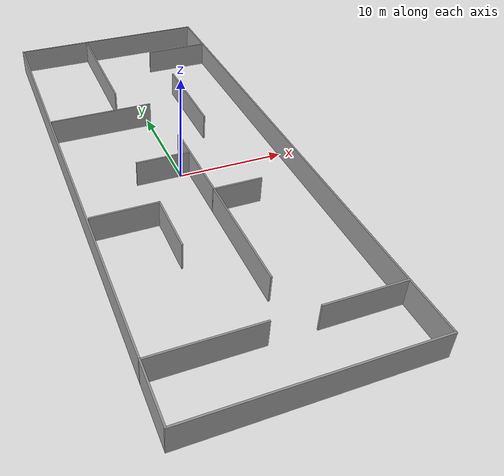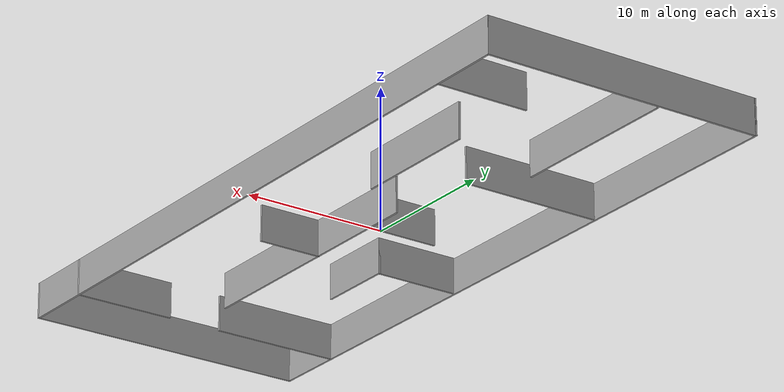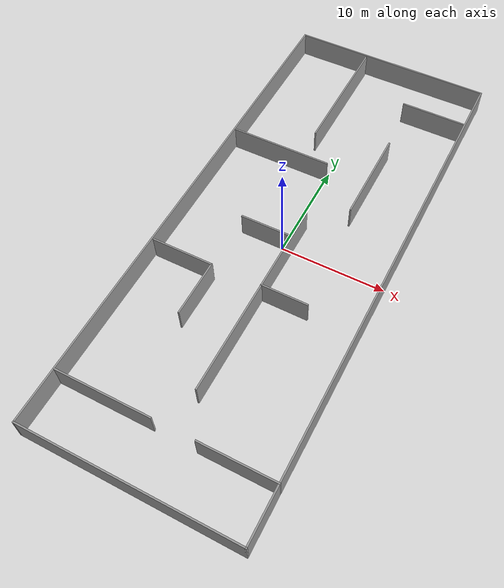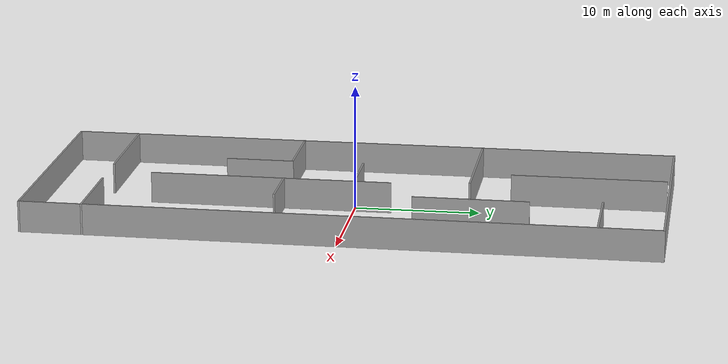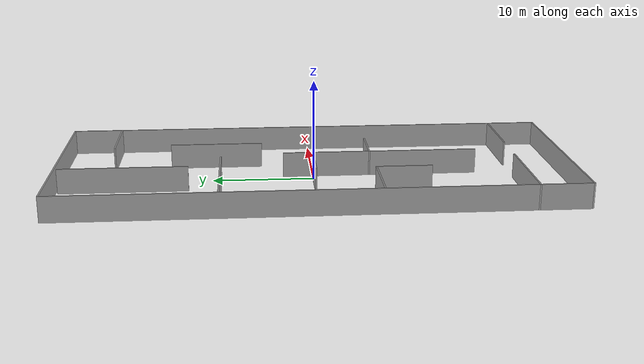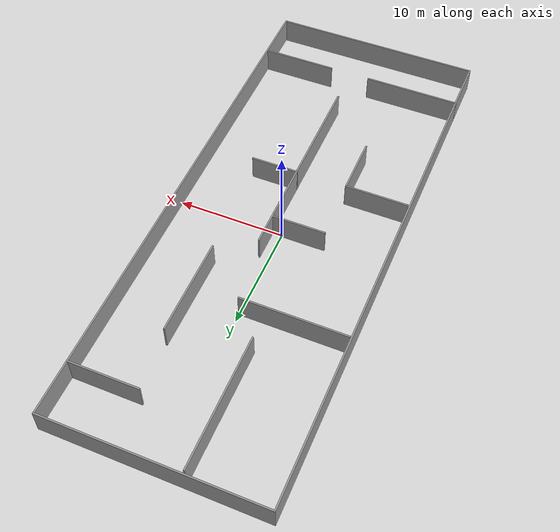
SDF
<?xml version='1.0'?>
<sdf version='1.7'>
  <model name='new_walls'>
    <pose>0 0 0 0 -0 0</pose>
    <link name='Wall_0'>
      <collision name='Wall_0_Collision'>
        <geometry>
          <box>
            <size>20.15 0.15 2.5</size>
          </box>
        </geometry>
        <pose>0 0 1.25 0 -0 0</pose>
      </collision>
      <visual name='Wall_0_Visual'>
        <pose>0 0 1.25 0 -0 0</pose>
        <geometry>
          <box>
            <size>20.15 0.15 2.5</size>
          </box>
        </geometry>
        <material>
          <script>
            <uri>file://media/materials/scripts/gazebo.material</uri>
            <name>Gazebo/Grey</name>
          </script>
          <ambient>1 1 1 1</ambient>
        </material>
        <meta>
          <layer>0</layer>
        </meta>
      </visual>
      <pose>0 -25 0 0 -0 0</pose>
    </link>
    <link name='Wall_15'>
      <collision name='Wall_15_Collision'>
        <geometry>
          <box>
            <size>12.5 0.15 2.5</size>
          </box>
        </geometry>
        <pose>0 0 1.25 0 -0 0</pose>
      </collision>
      <visual name='Wall_15_Visual'>
        <pose>0 0 1.25 0 -0 0</pose>
        <geometry>
          <box>
            <size>12.5 0.15 2.5</size>
          </box>
        </geometry>
        <material>
          <script>
            <uri>file://media/materials/scripts/gazebo.material</uri>
            <name>Gazebo/Grey</name>
          </script>
          <ambient>1 1 1 1</ambient>
        </material>
        <meta>
          <layer>0</layer>
        </meta>
      </visual>
      <pose>-2.65486 18.511 0 0 -0 -1.5708</pose>
    </link>
    <link name='Wall_17'>
      <collision name='Wall_17_Collision'>
        <geometry>
          <box>
            <size>9.948 0.15 2.5</size>
          </box>
        </geometry>
        <pose>0 0 1.25 0 -0 0</pose>
      </collision>
      <visual name='Wall_17_Visual'>
        <pose>0 0 1.25 0 -0 0</pose>
        <geometry>
          <box>
            <size>9.948 0.15 2.5</size>
          </box>
        </geometry>
        <material>
          <script>
            <uri>file://media/materials/scripts/gazebo.material</uri>
            <name>Gazebo/Grey</name>
          </script>
          <ambient>1 1 1 1</ambient>
        </material>
        <meta>
          <layer>0</layer>
        </meta>
      </visual>
      <pose>-4.899 9.21 0 0 -0 0</pose>
    </link>
    <link name='Wall_20'>
      <collision name='Wall_20_Collision'>
        <geometry>
          <box>
            <size>7.15 0.15 2.5</size>
          </box>
        </geometry>
        <pose>0 0 1.25 0 -0 0</pose>
      </collision>
      <visual name='Wall_20_Visual'>
        <pose>0 0 1.25 0 -0 0</pose>
        <geometry>
          <box>
            <size>7.15 0.15 2.5</size>
          </box>
        </geometry>
        <material>
          <script>
            <uri>file://media/materials/scripts/gazebo.material</uri>
            <name>Gazebo/Grey</name>
          </script>
          <ambient>1 1 1 1</ambient>
        </material>
        <meta>
          <layer>0</layer>
        </meta>
      </visual>
      <pose>6.5 -20 0 0 -0 3.14159</pose>
    </link>
    <link name='Wall_22'>
      <collision name='Wall_22_Collision'>
        <geometry>
          <box>
            <size>9.15 0.15 2.5</size>
          </box>
        </geometry>
        <pose>0 0 1.25 0 -0 0</pose>
      </collision>
      <visual name='Wall_22_Visual'>
        <pose>0 0 1.25 0 -0 0</pose>
        <geometry>
          <box>
            <size>9.15 0.15 2.5</size>
          </box>
        </geometry>
        <material>
          <script>
            <uri>file://media/materials/scripts/gazebo.material</uri>
            <name>Gazebo/Grey</name>
          </script>
          <ambient>1 1 1 1</ambient>
        </material>
        <meta>
          <layer>0</layer>
        </meta>
      </visual>
      <pose>-5.5 -20 0 0 -0 0</pose>
    </link>
    <link name='Wall_25'>
      <collision name='Wall_25_Collision'>
        <geometry>
          <box>
            <size>19.5 0.15 2.5</size>
          </box>
        </geometry>
        <pose>0 0 1.25 0 -0 0</pose>
      </collision>
      <visual name='Wall_25_Visual'>
        <pose>0 0 1.25 0 -0 0</pose>
        <geometry>
          <box>
            <size>19.5 0.15 2.5</size>
          </box>
        </geometry>
        <material>
          <script>
            <uri>file://media/materials/scripts/gazebo.material</uri>
            <name>Gazebo/Grey</name>
          </script>
          <ambient>1 1 1 1</ambient>
        </material>
        <meta>
          <layer>0</layer>
        </meta>
      </visual>
      <pose>0.892387 -6.72845 0 0 -0 -1.5708</pose>
    </link>
    <link name='Wall_27'>
      <collision name='Wall_27_Collision'>
        <geometry>
          <box>
            <size>5 0.15 2.5</size>
          </box>
        </geometry>
        <pose>0 0 1.25 0 -0 0</pose>
      </collision>
      <visual name='Wall_27_Visual'>
        <pose>0 0 1.25 0 -0 0</pose>
        <geometry>
          <box>
            <size>5 0.15 2.5</size>
          </box>
        </geometry>
        <material>
          <script>
            <uri>file://media/materials/scripts/gazebo.material</uri>
            <name>Gazebo/Grey</name>
          </script>
          <ambient>1 1 1 1</ambient>
        </material>
        <meta>
          <layer>0</layer>
        </meta>
      </visual>
      <pose>-1.64804 0.040986 0 0 -0 3.14159</pose>
    </link>
    <link name='Wall_29'>
      <collision name='Wall_29_Collision'>
        <geometry>
          <box>
            <size>6 0.15 2.5</size>
          </box>
        </geometry>
        <pose>0 0 1.25 0 -0 0</pose>
      </collision>
      <visual name='Wall_29_Visual'>
        <pose>0 0 1.25 0 -0 0</pose>
        <geometry>
          <box>
            <size>6 0.15 2.5</size>
          </box>
        </geometry>
        <material>
          <script>
            <uri>file://media/materials/scripts/gazebo.material</uri>
            <name>Gazebo/Grey</name>
          </script>
          <ambient>1 1 1 1</ambient>
        </material>
        <meta>
          <layer>0</layer>
        </meta>
      </visual>
      <pose>-6.84408 -5.7701 0 0 -0 0</pose>
    </link>
    <link name='Wall_3'>
      <collision name='Wall_3_Collision'>
        <geometry>
          <box>
            <size>50.15 0.15 2.5</size>
          </box>
        </geometry>
        <pose>0 0 1.25 0 -0 0</pose>
      </collision>
      <visual name='Wall_3_Visual'>
        <pose>0 0 1.25 0 -0 0</pose>
        <geometry>
          <box>
            <size>50.15 0.15 2.5</size>
          </box>
        </geometry>
        <material>
          <script>
            <uri>file://media/materials/scripts/gazebo.material</uri>
            <name>Gazebo/Grey</name>
          </script>
          <ambient>1 1 1 1</ambient>
        </material>
        <meta>
          <layer>0</layer>
        </meta>
      </visual>
      <pose>-10 0 0 0 -0 1.5708</pose>
    </link>
    <link name='Wall_30'>
      <collision name='Wall_30_Collision'>
        <geometry>
          <box>
            <size>5.5 0.15 2.5</size>
          </box>
        </geometry>
        <pose>0 0 1.25 0 -0 0</pose>
      </collision>
      <visual name='Wall_30_Visual'>
        <pose>0 0 1.25 0 -0 0</pose>
        <geometry>
          <box>
            <size>5.5 0.15 2.5</size>
          </box>
        </geometry>
        <material>
          <script>
            <uri>file://media/materials/scripts/gazebo.material</uri>
            <name>Gazebo/Grey</name>
          </script>
          <ambient>1 1 1 1</ambient>
        </material>
        <meta>
          <layer>0</layer>
        </meta>
      </visual>
      <pose>-3.91907 -8.4451 0 0 -0 -1.5708</pose>
    </link>
    <link name='Wall_33'>
      <collision name='Wall_33_Collision'>
        <geometry>
          <box>
            <size>4.5 0.15 2.5</size>
          </box>
        </geometry>
        <pose>0 0 1.25 0 -0 0</pose>
      </collision>
      <visual name='Wall_33_Visual'>
        <pose>0 0 1.25 0 -0 0</pose>
        <geometry>
          <box>
            <size>4.5 0.15 2.5</size>
          </box>
        </geometry>
        <material>
          <script>
            <uri>file://media/materials/scripts/gazebo.material</uri>
            <name>Gazebo/Grey</name>
          </script>
          <ambient>1 1 1 1</ambient>
        </material>
        <meta>
          <layer>0</layer>
        </meta>
      </visual>
      <pose>3.05958 -5.66248 0 0 -0 0</pose>
    </link>
    <link name='Wall_35'>
      <collision name='Wall_35_Collision'>
        <geometry>
          <box>
            <size>6.575 0.15 2.5</size>
          </box>
        </geometry>
        <pose>0 0 1.25 0 -0 0</pose>
      </collision>
      <visual name='Wall_35_Visual'>
        <pose>0 0 1.25 0 -0 0</pose>
        <geometry>
          <box>
            <size>6.575 0.15 2.5</size>
          </box>
        </geometry>
        <material>
          <script>
            <uri>file://media/materials/scripts/gazebo.material</uri>
            <name>Gazebo/Grey</name>
          </script>
          <ambient>1 1 1 1</ambient>
        </material>
        <meta>
          <layer>0</layer>
        </meta>
      </visual>
      <pose>6.7875 20 0 0 -0 0</pose>
    </link>
    <link name='Wall_38'>
      <collision name='Wall_38_Collision'>
        <geometry>
          <box>
            <size>9.25 0.15 2.5</size>
          </box>
        </geometry>
        <pose>0 0 1.25 0 -0 0</pose>
      </collision>
      <visual name='Wall_38_Visual'>
        <pose>0 0 1.25 0 -0 0</pose>
        <geometry>
          <box>
            <size>9.25 0.15 2.5</size>
          </box>
        </geometry>
        <material>
          <script>
            <uri>file://media/materials/scripts/gazebo.material</uri>
            <name>Gazebo/Grey</name>
          </script>
          <ambient>1 1 1 1</ambient>
        </material>
        <meta>
          <layer>0</layer>
        </meta>
      </visual>
      <pose>4.30156 9.73656 0 0 -0 -1.5708</pose>
    </link>
    <link name='Wall_5'>
      <collision name='Wall_5_Collision'>
        <geometry>
          <box>
            <size>20.15 0.15 2.5</size>
          </box>
        </geometry>
        <pose>0 0 1.25 0 -0 0</pose>
      </collision>
      <visual name='Wall_5_Visual'>
        <pose>0 0 1.25 0 -0 0</pose>
        <geometry>
          <box>
            <size>20.15 0.15 2.5</size>
          </box>
        </geometry>
        <material>
          <script>
            <uri>file://media/materials/scripts/gazebo.material</uri>
            <name>Gazebo/Grey</name>
          </script>
          <ambient>1 1 1 1</ambient>
        </material>
        <meta>
          <layer>0</layer>
        </meta>
      </visual>
      <pose>0 25 0 0 -0 0</pose>
    </link>
    <link name='Wall_6'>
      <collision name='Wall_6_Collision'>
        <geometry>
          <box>
            <size>50.15 0.15 2.5</size>
          </box>
        </geometry>
        <pose>0 0 1.25 0 -0 0</pose>
      </collision>
      <visual name='Wall_6_Visual'>
        <pose>0 0 1.25 0 -0 0</pose>
        <geometry>
          <box>
            <size>50.15 0.15 2.5</size>
          </box>
        </geometry>
        <material>
          <script>
            <uri>file://media/materials/scripts/gazebo.material</uri>
            <name>Gazebo/Grey</name>
          </script>
          <ambient>1 1 1 1</ambient>
        </material>
        <meta>
          <layer>0</layer>
        </meta>
      </visual>
      <pose>10 0 0 0 -0 -1.5708</pose>
    </link>
    <static>1</static>
  </model>
</sdf>
